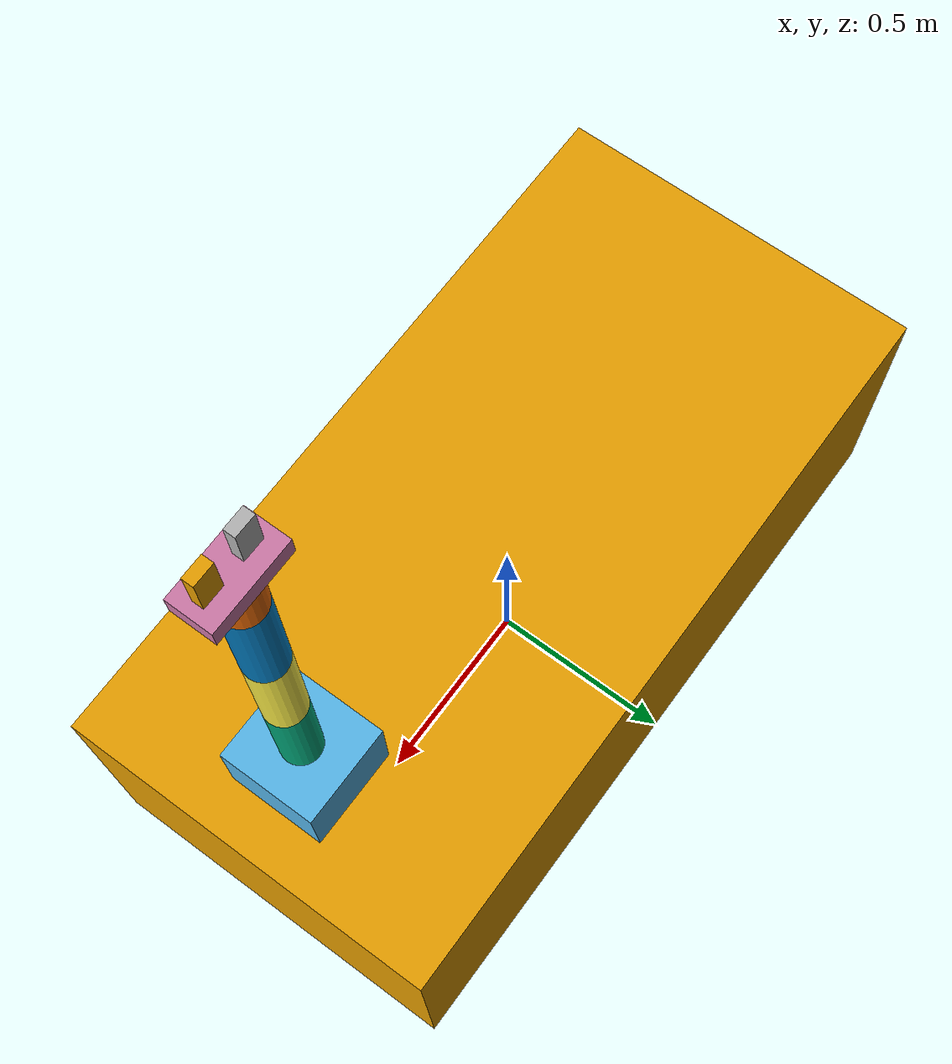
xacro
<?xml version="1.0" ?>

<robot name="robot" xmlns:xacro="http://www.ros.org/wiki/xacro">
    <link name="base">
        <visual>
            <origin rpy="0 0 0" xyz="0 0 0.375"/>
            <geometry>
                <box size="2 1 0.75"/>
            </geometry>
        </visual>
        <inertial>
            <origin xyz="0 0 0" />
            <mass value="100" />
            <inertia  ixx="0" ixy="0"  ixz="0"  iyy="0"  iyz="0"  izz="0" />
        </inertial>
        <collision>
            <origin rpy="0 0 0" xyz="0 0 0.375"/>
            <geometry>
                <box size="2 1 0.75"/>
            </geometry>
        </collision>
    </link>

    <joint name="base__base_link" type="prismatic">
        <parent link="base"/>
        <child link="base_link"/>
        <origin rpy="0 0 3.14" xyz="0.75 0 0.75"/>
        <axis xyz="1 0 0" />
        <limit effort="100.0" lower="0" upper="1.5" velocity="100" />
    </joint>

    <link name="base_link">
        <visual>
            <origin rpy="0 0 0" xyz="0 0 0.1"/>
            <geometry>
                <box size="0.25 0.25 0.2"/>
            </geometry>
        </visual>
        <inertial>
            <origin xyz="0 0 0" />
            <mass value="5.0" />
            <inertia  ixx="0" ixy="0"  ixz="0"  iyy="0"  iyz="0"  izz="0" />
        </inertial>
        <collision>
            <origin rpy="0 0 0" xyz="0 0 0.2"/>
            <geometry>
                <box size="0.25 0.25 0.2"/>
            </geometry>
        </collision>
    </link>

    <joint name="base_link__link_1" type="revolute">
        <axis xyz="0 0 1" />
        <limit effort="1000.0" lower="-3.14" upper="3.14" velocity="0.5" />
        <origin rpy="0 0 1.5708" xyz="0 0 0.2"/>
        <parent link="base_link"/>
        <child link="link1"/>
    </joint>

    <transmission name="trans_base_link__link_1">
        <type>transmission_interface/SimpleTransmission</type>
        <joint name="base_link__link_1">
            <hardwareInterface>EffortJointInterface</hardwareInterface>
        </joint>
        <actuator name="motor_base_link__link_1">
            <mechanicalReduction>1</mechanicalReduction>
            <hardwareInterface>EffortJointInterface</hardwareInterface>
        </actuator>
    </transmission>

    <link name="link1">
        <visual>
            <origin rpy="0 0 0" xyz="0 0 0.15"/>
            <geometry>
                <cylinder radius="0.05" length="0.3"/>
            </geometry>
        </visual>
        <inertial>
            <origin xyz="0 0 0" />
            <mass value="1.0" />
            <inertia  ixx="0" ixy="0"  ixz="0"  iyy="0"  iyz="0"  izz="0" />
        </inertial>
        <collision>
            <origin rpy="0 0 0" xyz="0 0 0.25"/>
            <geometry>
                <cylinder radius="0.05" length="0.3"/>
            </geometry>
        </collision>
    </link>

    <joint name="link_1__link_2" type="revolute">
        <axis xyz="0 1 0" />
        <limit effort="1000.0" lower="-3.14" upper="3.14" velocity="0.5" />
        <origin rpy="0 0 0" xyz="0 0 0.3"/>
        <parent link="link1"/>
        <child link="link2"/>
    </joint>

    <transmission name="trans_link_1__link_2">
        <type>transmission_interface/SimpleTransmission</type>
        <joint name="link_1__link_2">
            <hardwareInterface>EffortJointInterface</hardwareInterface>
        </joint>
        <actuator name="motor_link_1__link_2">
            <mechanicalReduction>1</mechanicalReduction>
            <hardwareInterface>EffortJointInterface</hardwareInterface>
        </actuator>
    </transmission>

    <link name="link2">
        <visual>
            <origin rpy="0 0 0" xyz="0 0 0.15"/>
            <geometry>
                <cylinder radius="0.05" length="0.3"/>
            </geometry>
        </visual>
        <inertial>
            <origin xyz="0 0 0" />
            <mass value="1.0" />
            <inertia  ixx="0" ixy="0"  ixz="0"  iyy="0"  iyz="0"  izz="0" />
        </inertial>
        <collision>
            <origin rpy="0 0 0" xyz="0 0 0.25"/>
            <geometry>
                <cylinder radius="0.05" length="0.3"/>
            </geometry>
        </collision>
    </link>

    <joint name="link_2__link_3" type="revolute">
        <axis xyz="0 1 0" />
        <limit effort="1000.0" lower="-3.14" upper="3.14" velocity="0.5" />
        <origin rpy="0 0 0" xyz="0 0 0.3"/>
        <parent link="link2"/>
        <child link="link3"/>
    </joint>

    <transmission name="trans_link_2__link_3">
        <type>transmission_interface/SimpleTransmission</type>
        <joint name="link_2__link_3">
            <hardwareInterface>EffortJointInterface</hardwareInterface>
        </joint>
        <actuator name="motor_link_2__link_3">
            <mechanicalReduction>1</mechanicalReduction>
            <hardwareInterface>EffortJointInterface</hardwareInterface>
        </actuator>
    </transmission>

    <link name="link3">
        <visual>
            <origin rpy="0 0 0" xyz="0 0 0.15"/>
            <geometry>
                <cylinder radius="0.05" length="0.3"/>
            </geometry>
        </visual>
        <inertial>
            <origin xyz="0 0 0" />
            <mass value="1.0" />
            <inertia  ixx="0" ixy="0"  ixz="0"  iyy="0"  iyz="0"  izz="0" />
        </inertial>
        <collision>
            <origin rpy="0 0 0" xyz="0 0 0.25"/>
            <geometry>
                <cylinder radius="0.05" length="0.3"/>
            </geometry>
        </collision>
    </link>

    <joint name="link_3__link_4" type="revolute">
        <axis xyz="0 1 0" />
        <limit effort="1000.0" lower="-3.14" upper="3.14" velocity="0.5" />
        <origin rpy="0 0 0" xyz="0 0 0.3"/>
        <parent link="link3"/>
        <child link="link4"/>
    </joint>

    <transmission name="trans_link_3__link_4">
        <type>transmission_interface/SimpleTransmission</type>
        <joint name="link_3__link_4">
            <hardwareInterface>EffortJointInterface</hardwareInterface>
        </joint>
        <actuator name="motor_link_3__link_4">
            <mechanicalReduction>1</mechanicalReduction>
            <hardwareInterface>EffortJointInterface</hardwareInterface>
        </actuator>
    </transmission>

    <link name="link4">
        <visual>
            <origin rpy="0 0 0" xyz="0 0 0.05"/>
            <geometry>
                <cylinder radius="0.05" length="0.1"/>
            </geometry>
        </visual>
        <inertial>
            <origin xyz="0 0 0" />
            <mass value="1.0" />
            <inertia  ixx="0" ixy="0"  ixz="0"  iyy="0"  iyz="0"  izz="0" />
        </inertial>
        <collision>
            <origin rpy="0 0 0" xyz="0 0 0.05"/>
            <geometry>
                <cylinder radius="0.05" length="0.1"/>
            </geometry>
        </collision>
    </link>

    <joint name="link_4__gripper_base" type="fixed">
        <origin rpy="0 0 1.5708" xyz="0 0 0.1"/>
        <parent link="link4"/>
        <child link="gripper_base"/>
    </joint>

    <link name="gripper_base">
        <visual>
            <origin rpy="0 0 0" xyz="0 0 0.025"/>
            <geometry>
                <box size="0.2 0.1 0.05"/>
            </geometry>
        </visual>
        <inertial>
            <origin xyz="0 0 0" />
            <mass value="0.5" />
            <inertia  ixx="0" ixy="0"  ixz="0"  iyy="0"  iyz="0"  izz="0" />
        </inertial>
        <collision>
            <origin rpy="0 0 0" xyz="0 0 0.025"/>
            <geometry>
                <box size="0.2 0.1 0.05"/>
            </geometry>
        </collision>
    </link>

    <!-- camera -->

    <joint name="gripper_base__gripper_left" type="prismatic">
        <parent link="gripper_base"/>
        <child link="gripper_left"/>
        <origin rpy="0 0 3.14" xyz="0 0 0.05"/>
        <axis xyz="1 0 0" />
        <limit effort="100.0" lower=".075" upper="0.025" velocity="100" />
    </joint>

    <link name="gripper_left">
        <visual>
            <origin rpy="0 0 0" xyz="0 0 0.05"/>
            <geometry>
                <box size="0.05 0.025 0.1"/>
            </geometry>
        </visual>
        <inertial>
            <origin xyz="0 0 0" />
            <mass value="0.5" />
            <inertia  ixx="0" ixy="0"  ixz="0"  iyy="0"  iyz="0"  izz="0" />
        </inertial>
        <collision>
            <origin rpy="0 0 0" xyz="0 0 0.05"/>
            <geometry>
                <box size="0.05 0.025 0.1"/>
            </geometry>
        </collision>
    </link>

    <joint name="gripper_base__gripper_right" type="prismatic">
        <parent link="gripper_base"/>
        <child link="gripper_right"/>
        <origin rpy="0 0 0" xyz="0 0 0.05"/>
        <axis xyz="1 0 0" />
        <limit effort="100.0" lower="0.025" upper="0.075" velocity="100" />
    </joint>

    <link name="gripper_right">
        <visual>
            <origin rpy="0 0 0" xyz="0 0 0.05"/>
            <geometry>
                <box size="0.05 0.025 0.1"/>
            </geometry>
        </visual>
        <inertial>
            <origin xyz="0 0 0" />
            <mass value="0.5" />
            <inertia  ixx="0" ixy="0"  ixz="0"  iyy="0"  iyz="0"  izz="0" />
        </inertial>
        <collision>
            <origin rpy="0 0 0" xyz="0 0 0.05"/>
            <geometry>
                <box size="0.05 0.025 0.1"/>
            </geometry>
        </collision>
    </link>

    <gazebo>
        <plugin name="gazebo_ros_control" filename="libgazebo_ros_control.so">
        </plugin>
    </gazebo>
</robot>
